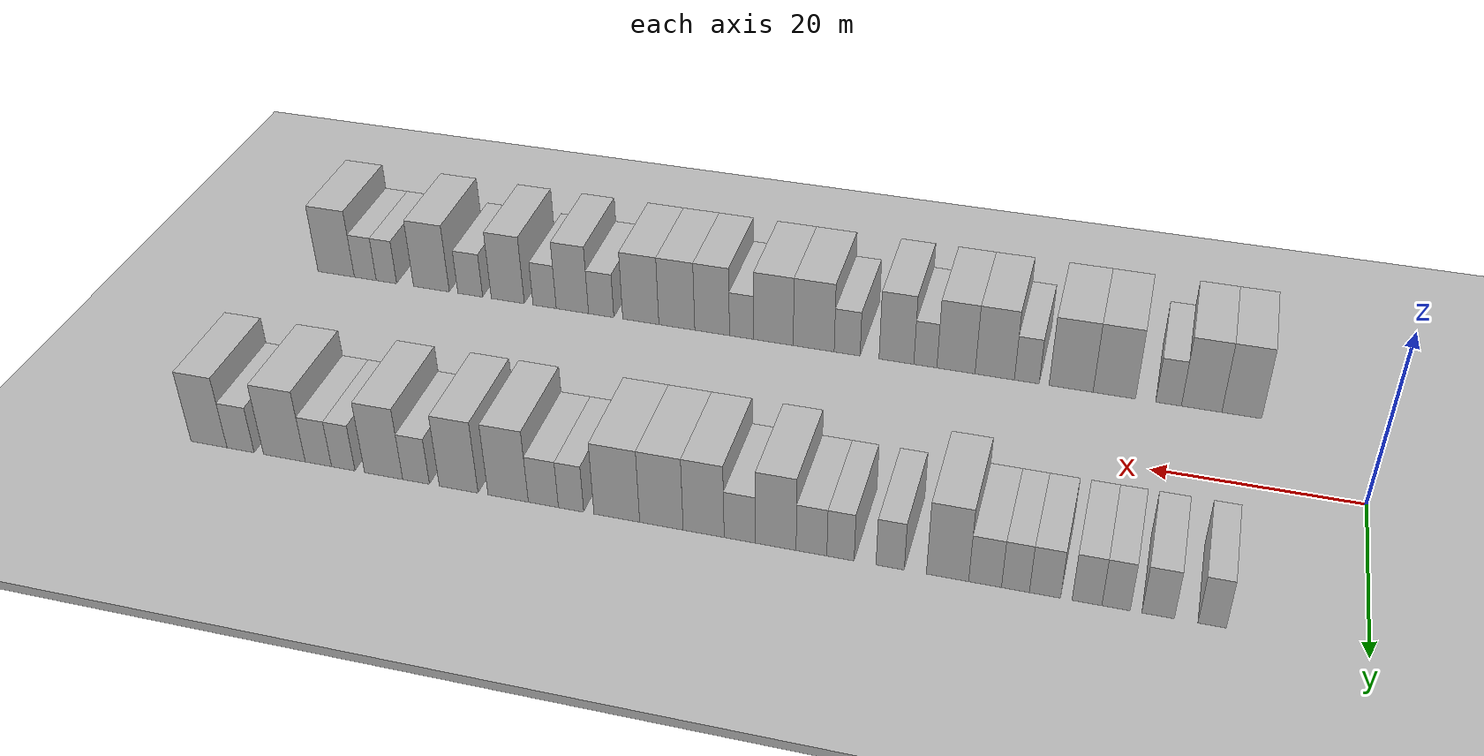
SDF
<sdf version="1.6">
 <world name="default">
  <include><name>ground_plane_1</name><uri>model://HANNAS_ground_plane</uri></include>
  <include>
   <name>ground_plane_2</name>
   <uri>model://HANNAS_ground_plane</uri>
   <pose>100 0 0  0 0 0</pose>
  </include>
  <model name="building_1">
   <static>1</static>
   <pose>13.2014 15.0000 0 0.000000 0.000000 1.570796</pose>
   <link name="link">
    <pose>0 0 3.00 0 0 0</pose>
    <collision name="collision"><geometry><box><size>10.0000 2.4029 6.0000</size></box></geometry></collision>
    <visual name="visual">
     <cast_shadows>0</cast_shadows>
     <geometry><box><size>10.0000 2.4029 6.0000</size></box></geometry>
     <material>
      <script>
       <uri>model://HANNAS_wall/materials/scripts</uri>
       <uri>model://HANNAS_wall/materials/textures</uri>
       <name>vrc/HANNAS_wall</name>
      </script>
     </material>
    </visual>
   </link>
  </model>
  <model name="building_2">
   <static>1</static>
   <pose>17.7954 15.0000 0 0.000000 0.000000 1.570796</pose>
   <link name="link">
    <pose>0 0 3.00 0 0 0</pose>
    <collision name="collision"><geometry><box><size>10.0000 2.7850 6.0000</size></box></geometry></collision>
    <visual name="visual">
     <cast_shadows>0</cast_shadows>
     <geometry><box><size>10.0000 2.7850 6.0000</size></box></geometry>
     <material>
      <script>
       <uri>model://HANNAS_wall/materials/scripts</uri>
       <uri>model://HANNAS_wall/materials/textures</uri>
       <name>vrc/HANNAS_wall</name>
      </script>
     </material>
    </visual>
   </link>
  </model>
  <model name="building_3">
   <static>1</static>
   <pose>21.4154 15.0000 0 0.000000 0.000000 1.570796</pose>
   <link name="link">
    <pose>0 0 3.00 0 0 0</pose>
    <collision name="collision"><geometry><box><size>10.0000 2.4551 6.0000</size></box></geometry></collision>
    <visual name="visual">
     <cast_shadows>0</cast_shadows>
     <geometry><box><size>10.0000 2.4551 6.0000</size></box></geometry>
     <material>
      <script>
       <uri>model://HANNAS_wall/materials/scripts</uri>
       <uri>model://HANNAS_wall/materials/textures</uri>
       <name>vrc/HANNAS_wall</name>
      </script>
     </material>
    </visual>
   </link>
  </model>
  <model name="building_4">
   <static>1</static>
   <pose>23.9385 15.0000 0 0.000000 0.000000 1.570796</pose>
   <link name="link">
    <pose>0 0 3.00 0 0 0</pose>
    <collision name="collision"><geometry><box><size>10.0000 2.5911 6.0000</size></box></geometry></collision>
    <visual name="visual">
     <cast_shadows>0</cast_shadows>
     <geometry><box><size>10.0000 2.5911 6.0000</size></box></geometry>
     <material>
      <script>
       <uri>model://HANNAS_wall/materials/scripts</uri>
       <uri>model://HANNAS_wall/materials/textures</uri>
       <name>vrc/HANNAS_wall</name>
      </script>
     </material>
    </visual>
   </link>
  </model>
  <model name="building_5">
   <static>1</static>
   <pose>27.6037 15.0000 0 0.000000 0.000000 1.570796</pose>
   <link name="link">
    <pose>0 0 3.00 0 0 0</pose>
    <collision name="collision"><geometry><box><size>10.0000 2.7393 6.0000</size></box></geometry></collision>
    <visual name="visual">
     <cast_shadows>0</cast_shadows>
     <geometry><box><size>10.0000 2.7393 6.0000</size></box></geometry>
     <material>
      <script>
       <uri>model://HANNAS_wall/materials/scripts</uri>
       <uri>model://HANNAS_wall/materials/textures</uri>
       <name>vrc/HANNAS_wall</name>
      </script>
     </material>
    </visual>
   </link>
  </model>
  <model name="building_6">
   <static>1</static>
   <pose>30.2066 15.0000 0 0.000000 0.000000 1.570796</pose>
   <link name="link">
    <pose>0 0 3.00 0 0 0</pose>
    <collision name="collision"><geometry><box><size>10.0000 2.4665 6.0000</size></box></geometry></collision>
    <visual name="visual">
     <cast_shadows>0</cast_shadows>
     <geometry><box><size>10.0000 2.4665 6.0000</size></box></geometry>
     <material>
      <script>
       <uri>model://HANNAS_wall/materials/scripts</uri>
       <uri>model://HANNAS_wall/materials/textures</uri>
       <name>vrc/HANNAS_wall</name>
      </script>
     </material>
    </visual>
   </link>
  </model>
  <model name="building_7">
   <static>1</static>
   <pose>32.9014 15.0000 0 0.000000 0.000000 1.570796</pose>
   <link name="link">
    <pose>0 0 3.00 0 0 0</pose>
    <collision name="collision"><geometry><box><size>10.0000 2.9229 6.0000</size></box></geometry></collision>
    <visual name="visual">
     <cast_shadows>0</cast_shadows>
     <geometry><box><size>10.0000 2.9229 6.0000</size></box></geometry>
     <material>
      <script>
       <uri>model://HANNAS_wall/materials/scripts</uri>
       <uri>model://HANNAS_wall/materials/textures</uri>
       <name>vrc/HANNAS_wall</name>
      </script>
     </material>
    </visual>
   </link>
  </model>
  <model name="building_8">
   <static>1</static>
   <pose>36.2609 15.0000 0 0.000000 0.000000 1.570796</pose>
   <link name="link">
    <pose>0 0 4.50 0 0 0</pose>
    <collision name="collision"><geometry><box><size>10.0000 3.7962 9.0000</size></box></geometry></collision>
    <visual name="visual">
     <cast_shadows>0</cast_shadows>
     <geometry><box><size>10.0000 3.7962 9.0000</size></box></geometry>
     <material>
      <script>
       <uri>model://HANNAS_wall/materials/scripts</uri>
       <uri>model://HANNAS_wall/materials/textures</uri>
       <name>vrc/HANNAS_wall</name>
      </script>
     </material>
    </visual>
   </link>
  </model>
  <model name="building_9">
   <static>1</static>
   <pose>41.4479 15.0000 0 0.000000 0.000000 1.570796</pose>
   <link name="link">
    <pose>0 0 3.00 0 0 0</pose>
    <collision name="collision"><geometry><box><size>10.0000 2.5777 6.0000</size></box></geometry></collision>
    <visual name="visual">
     <cast_shadows>0</cast_shadows>
     <geometry><box><size>10.0000 2.5777 6.0000</size></box></geometry>
     <material>
      <script>
       <uri>model://HANNAS_wall/materials/scripts</uri>
       <uri>model://HANNAS_wall/materials/textures</uri>
       <name>vrc/HANNAS_wall</name>
      </script>
     </material>
    </visual>
   </link>
  </model>
  <model name="building_10">
   <static>1</static>
   <pose>45.9956 15.0000 0 0.000000 0.000000 1.570796</pose>
   <link name="link">
    <pose>0 0 3.00 0 0 0</pose>
    <collision name="collision"><geometry><box><size>10.0000 2.5177 6.0000</size></box></geometry></collision>
    <visual name="visual">
     <cast_shadows>0</cast_shadows>
     <geometry><box><size>10.0000 2.5177 6.0000</size></box></geometry>
     <material>
      <script>
       <uri>model://HANNAS_wall/materials/scripts</uri>
       <uri>model://HANNAS_wall/materials/textures</uri>
       <name>vrc/HANNAS_wall</name>
      </script>
     </material>
    </visual>
   </link>
  </model>
  <model name="building_11">
   <static>1</static>
   <pose>48.6783 15.0000 0 0.000000 0.000000 1.570796</pose>
   <link name="link">
    <pose>0 0 3.00 0 0 0</pose>
    <collision name="collision"><geometry><box><size>10.0000 2.8477 6.0000</size></box></geometry></collision>
    <visual name="visual">
     <cast_shadows>0</cast_shadows>
     <geometry><box><size>10.0000 2.8477 6.0000</size></box></geometry>
     <material>
      <script>
       <uri>model://HANNAS_wall/materials/scripts</uri>
       <uri>model://HANNAS_wall/materials/textures</uri>
       <name>vrc/HANNAS_wall</name>
      </script>
     </material>
    </visual>
   </link>
  </model>
  <model name="building_12">
   <static>1</static>
   <pose>51.9933 15.0000 0 0.000000 0.000000 1.570796</pose>
   <link name="link">
    <pose>0 0 4.50 0 0 0</pose>
    <collision name="collision"><geometry><box><size>10.0000 3.7822 9.0000</size></box></geometry></collision>
    <visual name="visual">
     <cast_shadows>0</cast_shadows>
     <geometry><box><size>10.0000 3.7822 9.0000</size></box></geometry>
     <material>
      <script>
       <uri>model://HANNAS_wall/materials/scripts</uri>
       <uri>model://HANNAS_wall/materials/textures</uri>
       <name>vrc/HANNAS_wall</name>
      </script>
     </material>
    </visual>
   </link>
  </model>
  <model name="building_13">
   <static>1</static>
   <pose>55.3688 15.0000 0 0.000000 0.000000 1.570796</pose>
   <link name="link">
    <pose>0 0 3.00 0 0 0</pose>
    <collision name="collision"><geometry><box><size>10.0000 2.9688 6.0000</size></box></geometry></collision>
    <visual name="visual">
     <cast_shadows>0</cast_shadows>
     <geometry><box><size>10.0000 2.9688 6.0000</size></box></geometry>
     <material>
      <script>
       <uri>model://HANNAS_wall/materials/scripts</uri>
       <uri>model://HANNAS_wall/materials/textures</uri>
       <name>vrc/HANNAS_wall</name>
      </script>
     </material>
    </visual>
   </link>
  </model>
  <model name="building_14">
   <static>1</static>
   <pose>58.8022 15.0000 0 0.000000 0.000000 1.570796</pose>
   <link name="link">
    <pose>0 0 4.50 0 0 0</pose>
    <collision name="collision"><geometry><box><size>10.0000 3.8981 9.0000</size></box></geometry></collision>
    <visual name="visual">
     <cast_shadows>0</cast_shadows>
     <geometry><box><size>10.0000 3.8981 9.0000</size></box></geometry>
     <material>
      <script>
       <uri>model://HANNAS_wall/materials/scripts</uri>
       <uri>model://HANNAS_wall/materials/textures</uri>
       <name>vrc/HANNAS_wall</name>
      </script>
     </material>
    </visual>
   </link>
  </model>
  <model name="building_15">
   <static>1</static>
   <pose>62.8452 15.0000 0 0.000000 0.000000 1.570796</pose>
   <link name="link">
    <pose>0 0 4.50 0 0 0</pose>
    <collision name="collision"><geometry><box><size>10.0000 4.1878 9.0000</size></box></geometry></collision>
    <visual name="visual">
     <cast_shadows>0</cast_shadows>
     <geometry><box><size>10.0000 4.1878 9.0000</size></box></geometry>
     <material>
      <script>
       <uri>model://HANNAS_wall/materials/scripts</uri>
       <uri>model://HANNAS_wall/materials/textures</uri>
       <name>vrc/HANNAS_wall</name>
      </script>
     </material>
    </visual>
   </link>
  </model>
  <model name="building_16">
   <static>1</static>
   <pose>67.1615 15.0000 0 0.000000 0.000000 1.570796</pose>
   <link name="link">
    <pose>0 0 4.50 0 0 0</pose>
    <collision name="collision"><geometry><box><size>10.0000 4.4448 9.0000</size></box></geometry></collision>
    <visual name="visual">
     <cast_shadows>0</cast_shadows>
     <geometry><box><size>10.0000 4.4448 9.0000</size></box></geometry>
     <material>
      <script>
       <uri>model://HANNAS_wall/materials/scripts</uri>
       <uri>model://HANNAS_wall/materials/textures</uri>
       <name>vrc/HANNAS_wall</name>
      </script>
     </material>
    </visual>
   </link>
  </model>
  <model name="building_17">
   <static>1</static>
   <pose>71.6301 15.0000 0 0.000000 0.000000 1.570796</pose>
   <link name="link">
    <pose>0 0 3.00 0 0 0</pose>
    <collision name="collision"><geometry><box><size>10.0000 2.4925 6.0000</size></box></geometry></collision>
    <visual name="visual">
     <cast_shadows>0</cast_shadows>
     <geometry><box><size>10.0000 2.4925 6.0000</size></box></geometry>
     <material>
      <script>
       <uri>model://HANNAS_wall/materials/scripts</uri>
       <uri>model://HANNAS_wall/materials/textures</uri>
       <name>vrc/HANNAS_wall</name>
      </script>
     </material>
    </visual>
   </link>
  </model>
  <model name="building_18">
   <static>1</static>
   <pose>74.3623 15.0000 0 0.000000 0.000000 1.570796</pose>
   <link name="link">
    <pose>0 0 3.00 0 0 0</pose>
    <collision name="collision"><geometry><box><size>10.0000 2.9719 6.0000</size></box></geometry></collision>
    <visual name="visual">
     <cast_shadows>0</cast_shadows>
     <geometry><box><size>10.0000 2.9719 6.0000</size></box></geometry>
     <material>
      <script>
       <uri>model://HANNAS_wall/materials/scripts</uri>
       <uri>model://HANNAS_wall/materials/textures</uri>
       <name>vrc/HANNAS_wall</name>
      </script>
     </material>
    </visual>
   </link>
  </model>
  <model name="building_19">
   <static>1</static>
   <pose>77.8619 15.0000 0 0.000000 0.000000 1.570796</pose>
   <link name="link">
    <pose>0 0 4.50 0 0 0</pose>
    <collision name="collision"><geometry><box><size>10.0000 4.0272 9.0000</size></box></geometry></collision>
    <visual name="visual">
     <cast_shadows>0</cast_shadows>
     <geometry><box><size>10.0000 4.0272 9.0000</size></box></geometry>
     <material>
      <script>
       <uri>model://HANNAS_wall/materials/scripts</uri>
       <uri>model://HANNAS_wall/materials/textures</uri>
       <name>vrc/HANNAS_wall</name>
      </script>
     </material>
    </visual>
   </link>
  </model>
  <model name="building_20">
   <static>1</static>
   <pose>82.8364 15.0000 0 0.000000 0.000000 1.570796</pose>
   <link name="link">
    <pose>0 0 4.50 0 0 0</pose>
    <collision name="collision"><geometry><box><size>10.0000 3.9218 9.0000</size></box></geometry></collision>
    <visual name="visual">
     <cast_shadows>0</cast_shadows>
     <geometry><box><size>10.0000 3.9218 9.0000</size></box></geometry>
     <material>
      <script>
       <uri>model://HANNAS_wall/materials/scripts</uri>
       <uri>model://HANNAS_wall/materials/textures</uri>
       <name>vrc/HANNAS_wall</name>
      </script>
     </material>
    </visual>
   </link>
  </model>
  <model name="building_21">
   <static>1</static>
   <pose>87.1644 15.0000 0 0.000000 0.000000 1.570796</pose>
   <link name="link">
    <pose>0 0 3.00 0 0 0</pose>
    <collision name="collision"><geometry><box><size>10.0000 2.7342 6.0000</size></box></geometry></collision>
    <visual name="visual">
     <cast_shadows>0</cast_shadows>
     <geometry><box><size>10.0000 2.7342 6.0000</size></box></geometry>
     <material>
      <script>
       <uri>model://HANNAS_wall/materials/scripts</uri>
       <uri>model://HANNAS_wall/materials/textures</uri>
       <name>vrc/HANNAS_wall</name>
      </script>
     </material>
    </visual>
   </link>
  </model>
  <model name="building_22">
   <static>1</static>
   <pose>90.4941 15.0000 0 0.000000 0.000000 1.570796</pose>
   <link name="link">
    <pose>0 0 4.50 0 0 0</pose>
    <collision name="collision"><geometry><box><size>10.0000 3.9252 9.0000</size></box></geometry></collision>
    <visual name="visual">
     <cast_shadows>0</cast_shadows>
     <geometry><box><size>10.0000 3.9252 9.0000</size></box></geometry>
     <material>
      <script>
       <uri>model://HANNAS_wall/materials/scripts</uri>
       <uri>model://HANNAS_wall/materials/textures</uri>
       <name>vrc/HANNAS_wall</name>
      </script>
     </material>
    </visual>
   </link>
  </model>
  <model name="building_23">
   <static>1</static>
   <pose>94.6765 15.0000 0 0.000000 0.000000 1.570796</pose>
   <link name="link">
    <pose>0 0 3.00 0 0 0</pose>
    <collision name="collision"><geometry><box><size>10.0000 2.4396 6.0000</size></box></geometry></collision>
    <visual name="visual">
     <cast_shadows>0</cast_shadows>
     <geometry><box><size>10.0000 2.4396 6.0000</size></box></geometry>
     <material>
      <script>
       <uri>model://HANNAS_wall/materials/scripts</uri>
       <uri>model://HANNAS_wall/materials/textures</uri>
       <name>vrc/HANNAS_wall</name>
      </script>
     </material>
    </visual>
   </link>
  </model>
  <model name="building_24">
   <static>1</static>
   <pose>97.2753 15.0000 0 0.000000 0.000000 1.570796</pose>
   <link name="link">
    <pose>0 0 3.00 0 0 0</pose>
    <collision name="collision"><geometry><box><size>10.0000 2.7580 6.0000</size></box></geometry></collision>
    <visual name="visual">
     <cast_shadows>0</cast_shadows>
     <geometry><box><size>10.0000 2.7580 6.0000</size></box></geometry>
     <material>
      <script>
       <uri>model://HANNAS_wall/materials/scripts</uri>
       <uri>model://HANNAS_wall/materials/textures</uri>
       <name>vrc/HANNAS_wall</name>
      </script>
     </material>
    </visual>
   </link>
  </model>
  <model name="building_25">
   <static>1</static>
   <pose>100.8544 15.0000 0 0.000000 0.000000 1.570796</pose>
   <link name="link">
    <pose>0 0 4.50 0 0 0</pose>
    <collision name="collision"><geometry><box><size>10.0000 4.4003 9.0000</size></box></geometry></collision>
    <visual name="visual">
     <cast_shadows>0</cast_shadows>
     <geometry><box><size>10.0000 4.4003 9.0000</size></box></geometry>
     <material>
      <script>
       <uri>model://HANNAS_wall/materials/scripts</uri>
       <uri>model://HANNAS_wall/materials/textures</uri>
       <name>vrc/HANNAS_wall</name>
      </script>
     </material>
    </visual>
   </link>
  </model>
  <model name="building_26">
   <static>1</static>
   <pose>105.5059 15.0000 0 0.000000 0.000000 1.570796</pose>
   <link name="link">
    <pose>0 0 3.00 0 0 0</pose>
    <collision name="collision"><geometry><box><size>10.0000 2.9027 6.0000</size></box></geometry></collision>
    <visual name="visual">
     <cast_shadows>0</cast_shadows>
     <geometry><box><size>10.0000 2.9027 6.0000</size></box></geometry>
     <material>
      <script>
       <uri>model://HANNAS_wall/materials/scripts</uri>
       <uri>model://HANNAS_wall/materials/textures</uri>
       <name>vrc/HANNAS_wall</name>
      </script>
     </material>
    </visual>
   </link>
  </model>
  <model name="building_27">
   <static>1</static>
   <pose>108.8884 15.0000 0 0.000000 0.000000 1.570796</pose>
   <link name="link">
    <pose>0 0 4.50 0 0 0</pose>
    <collision name="collision"><geometry><box><size>10.0000 3.8622 9.0000</size></box></geometry></collision>
    <visual name="visual">
     <cast_shadows>0</cast_shadows>
     <geometry><box><size>10.0000 3.8622 9.0000</size></box></geometry>
     <material>
      <script>
       <uri>model://HANNAS_wall/materials/scripts</uri>
       <uri>model://HANNAS_wall/materials/textures</uri>
       <name>vrc/HANNAS_wall</name>
      </script>
     </material>
    </visual>
   </link>
  </model>
  <model name="building_54">
   <static>1</static>
   <pose>11.9435 -15.0000 0 0.000000 0.000000 1.570796</pose>
   <link name="link">
    <pose>0 0 4.50 0 0 0</pose>
    <collision name="collision"><geometry><box><size>10.0000 3.8869 9.0000</size></box></geometry></collision>
    <visual name="visual">
     <cast_shadows>0</cast_shadows>
     <geometry><box><size>10.0000 3.8869 9.0000</size></box></geometry>
     <material>
      <script>
       <uri>model://HANNAS_wall/materials/scripts</uri>
       <uri>model://HANNAS_wall/materials/textures</uri>
       <name>vrc/HANNAS_wall</name>
      </script>
     </material>
    </visual>
   </link>
  </model>
  <model name="building_55">
   <static>1</static>
   <pose>15.8666 -15.0000 0 0.000000 0.000000 1.570796</pose>
   <link name="link">
    <pose>0 0 4.50 0 0 0</pose>
    <collision name="collision"><geometry><box><size>10.0000 3.9593 9.0000</size></box></geometry></collision>
    <visual name="visual">
     <cast_shadows>0</cast_shadows>
     <geometry><box><size>10.0000 3.9593 9.0000</size></box></geometry>
     <material>
      <script>
       <uri>model://HANNAS_wall/materials/scripts</uri>
       <uri>model://HANNAS_wall/materials/textures</uri>
       <name>vrc/HANNAS_wall</name>
      </script>
     </material>
    </visual>
   </link>
  </model>
  <model name="building_56">
   <static>1</static>
   <pose>19.1136 -15.0000 0 0.000000 0.000000 1.570796</pose>
   <link name="link">
    <pose>0 0 3.00 0 0 0</pose>
    <collision name="collision"><geometry><box><size>10.0000 2.5347 6.0000</size></box></geometry></collision>
    <visual name="visual">
     <cast_shadows>0</cast_shadows>
     <geometry><box><size>10.0000 2.5347 6.0000</size></box></geometry>
     <material>
      <script>
       <uri>model://HANNAS_wall/materials/scripts</uri>
       <uri>model://HANNAS_wall/materials/textures</uri>
       <name>vrc/HANNAS_wall</name>
      </script>
     </material>
    </visual>
   </link>
  </model>
  <model name="building_57">
   <static>1</static>
   <pose>24.5048 -15.0000 0 0.000000 0.000000 1.570796</pose>
   <link name="link">
    <pose>0 0 4.50 0 0 0</pose>
    <collision name="collision"><geometry><box><size>10.0000 4.2478 9.0000</size></box></geometry></collision>
    <visual name="visual">
     <cast_shadows>0</cast_shadows>
     <geometry><box><size>10.0000 4.2478 9.0000</size></box></geometry>
     <material>
      <script>
       <uri>model://HANNAS_wall/materials/scripts</uri>
       <uri>model://HANNAS_wall/materials/textures</uri>
       <name>vrc/HANNAS_wall</name>
      </script>
     </material>
    </visual>
   </link>
  </model>
  <model name="building_58">
   <static>1</static>
   <pose>28.8528 -15.0000 0 0.000000 0.000000 1.570796</pose>
   <link name="link">
    <pose>0 0 4.50 0 0 0</pose>
    <collision name="collision"><geometry><box><size>10.0000 4.4482 9.0000</size></box></geometry></collision>
    <visual name="visual">
     <cast_shadows>0</cast_shadows>
     <geometry><box><size>10.0000 4.4482 9.0000</size></box></geometry>
     <material>
      <script>
       <uri>model://HANNAS_wall/materials/scripts</uri>
       <uri>model://HANNAS_wall/materials/textures</uri>
       <name>vrc/HANNAS_wall</name>
      </script>
     </material>
    </visual>
   </link>
  </model>
  <model name="building_59">
   <static>1</static>
   <pose>33.3457 -15.0000 0 0.000000 0.000000 1.570796</pose>
   <link name="link">
    <pose>0 0 3.00 0 0 0</pose>
    <collision name="collision"><geometry><box><size>10.0000 2.5378 6.0000</size></box></geometry></collision>
    <visual name="visual">
     <cast_shadows>0</cast_shadows>
     <geometry><box><size>10.0000 2.5378 6.0000</size></box></geometry>
     <material>
      <script>
       <uri>model://HANNAS_wall/materials/scripts</uri>
       <uri>model://HANNAS_wall/materials/textures</uri>
       <name>vrc/HANNAS_wall</name>
      </script>
     </material>
    </visual>
   </link>
  </model>
  <model name="building_60">
   <static>1</static>
   <pose>36.6359 -15.0000 0 0.000000 0.000000 1.570796</pose>
   <link name="link">
    <pose>0 0 4.50 0 0 0</pose>
    <collision name="collision"><geometry><box><size>10.0000 4.0426 9.0000</size></box></geometry></collision>
    <visual name="visual">
     <cast_shadows>0</cast_shadows>
     <geometry><box><size>10.0000 4.0426 9.0000</size></box></geometry>
     <material>
      <script>
       <uri>model://HANNAS_wall/materials/scripts</uri>
       <uri>model://HANNAS_wall/materials/textures</uri>
       <name>vrc/HANNAS_wall</name>
      </script>
     </material>
    </visual>
   </link>
  </model>
  <model name="building_61">
   <static>1</static>
   <pose>40.6339 -15.0000 0 0.000000 0.000000 1.570796</pose>
   <link name="link">
    <pose>0 0 4.50 0 0 0</pose>
    <collision name="collision"><geometry><box><size>10.0000 3.9534 9.0000</size></box></geometry></collision>
    <visual name="visual">
     <cast_shadows>0</cast_shadows>
     <geometry><box><size>10.0000 3.9534 9.0000</size></box></geometry>
     <material>
      <script>
       <uri>model://HANNAS_wall/materials/scripts</uri>
       <uri>model://HANNAS_wall/materials/textures</uri>
       <name>vrc/HANNAS_wall</name>
      </script>
     </material>
    </visual>
   </link>
  </model>
  <model name="building_62">
   <static>1</static>
   <pose>43.8188 -15.0000 0 0.000000 0.000000 1.570796</pose>
   <link name="link">
    <pose>0 0 3.00 0 0 0</pose>
    <collision name="collision"><geometry><box><size>10.0000 2.4164 6.0000</size></box></geometry></collision>
    <visual name="visual">
     <cast_shadows>0</cast_shadows>
     <geometry><box><size>10.0000 2.4164 6.0000</size></box></geometry>
     <material>
      <script>
       <uri>model://HANNAS_wall/materials/scripts</uri>
       <uri>model://HANNAS_wall/materials/textures</uri>
       <name>vrc/HANNAS_wall</name>
      </script>
     </material>
    </visual>
   </link>
  </model>
  <model name="building_63">
   <static>1</static>
   <pose>46.8546 -15.0000 0 0.000000 0.000000 1.570796</pose>
   <link name="link">
    <pose>0 0 4.50 0 0 0</pose>
    <collision name="collision"><geometry><box><size>10.0000 3.6552 9.0000</size></box></geometry></collision>
    <visual name="visual">
     <cast_shadows>0</cast_shadows>
     <geometry><box><size>10.0000 3.6552 9.0000</size></box></geometry>
     <material>
      <script>
       <uri>model://HANNAS_wall/materials/scripts</uri>
       <uri>model://HANNAS_wall/materials/textures</uri>
       <name>vrc/HANNAS_wall</name>
      </script>
     </material>
    </visual>
   </link>
  </model>
  <model name="building_64">
   <static>1</static>
   <pose>52.0628 -15.0000 0 0.000000 0.000000 1.570796</pose>
   <link name="link">
    <pose>0 0 3.00 0 0 0</pose>
    <collision name="collision"><geometry><box><size>10.0000 2.7612 6.0000</size></box></geometry></collision>
    <visual name="visual">
     <cast_shadows>0</cast_shadows>
     <geometry><box><size>10.0000 2.7612 6.0000</size></box></geometry>
     <material>
      <script>
       <uri>model://HANNAS_wall/materials/scripts</uri>
       <uri>model://HANNAS_wall/materials/textures</uri>
       <name>vrc/HANNAS_wall</name>
      </script>
     </material>
    </visual>
   </link>
  </model>
  <model name="building_65">
   <static>1</static>
   <pose>55.6362 -15.0000 0 0.000000 0.000000 1.570796</pose>
   <link name="link">
    <pose>0 0 4.50 0 0 0</pose>
    <collision name="collision"><geometry><box><size>10.0000 4.3856 9.0000</size></box></geometry></collision>
    <visual name="visual">
     <cast_shadows>0</cast_shadows>
     <geometry><box><size>10.0000 4.3856 9.0000</size></box></geometry>
     <material>
      <script>
       <uri>model://HANNAS_wall/materials/scripts</uri>
       <uri>model://HANNAS_wall/materials/textures</uri>
       <name>vrc/HANNAS_wall</name>
      </script>
     </material>
    </visual>
   </link>
  </model>
  <model name="building_66">
   <static>1</static>
   <pose>59.9637 -15.0000 0 0.000000 0.000000 1.570796</pose>
   <link name="link">
    <pose>0 0 4.50 0 0 0</pose>
    <collision name="collision"><geometry><box><size>10.0000 4.2694 9.0000</size></box></geometry></collision>
    <visual name="visual">
     <cast_shadows>0</cast_shadows>
     <geometry><box><size>10.0000 4.2694 9.0000</size></box></geometry>
     <material>
      <script>
       <uri>model://HANNAS_wall/materials/scripts</uri>
       <uri>model://HANNAS_wall/materials/textures</uri>
       <name>vrc/HANNAS_wall</name>
      </script>
     </material>
    </visual>
   </link>
  </model>
  <model name="building_67">
   <static>1</static>
   <pose>63.4255 -15.0000 0 0.000000 0.000000 1.570796</pose>
   <link name="link">
    <pose>0 0 3.00 0 0 0</pose>
    <collision name="collision"><geometry><box><size>10.0000 2.6542 6.0000</size></box></geometry></collision>
    <visual name="visual">
     <cast_shadows>0</cast_shadows>
     <geometry><box><size>10.0000 2.6542 6.0000</size></box></geometry>
     <material>
      <script>
       <uri>model://HANNAS_wall/materials/scripts</uri>
       <uri>model://HANNAS_wall/materials/textures</uri>
       <name>vrc/HANNAS_wall</name>
      </script>
     </material>
    </visual>
   </link>
  </model>
  <model name="building_68">
   <static>1</static>
   <pose>66.6606 -15.0000 0 0.000000 0.000000 1.570796</pose>
   <link name="link">
    <pose>0 0 4.50 0 0 0</pose>
    <collision name="collision"><geometry><box><size>10.0000 3.8160 9.0000</size></box></geometry></collision>
    <visual name="visual">
     <cast_shadows>0</cast_shadows>
     <geometry><box><size>10.0000 3.8160 9.0000</size></box></geometry>
     <material>
      <script>
       <uri>model://HANNAS_wall/materials/scripts</uri>
       <uri>model://HANNAS_wall/materials/textures</uri>
       <name>vrc/HANNAS_wall</name>
      </script>
     </material>
    </visual>
   </link>
  </model>
  <model name="building_69">
   <static>1</static>
   <pose>70.5635 -15.0000 0 0.000000 0.000000 1.570796</pose>
   <link name="link">
    <pose>0 0 4.50 0 0 0</pose>
    <collision name="collision"><geometry><box><size>10.0000 3.9898 9.0000</size></box></geometry></collision>
    <visual name="visual">
     <cast_shadows>0</cast_shadows>
     <geometry><box><size>10.0000 3.9898 9.0000</size></box></geometry>
     <material>
      <script>
       <uri>model://HANNAS_wall/materials/scripts</uri>
       <uri>model://HANNAS_wall/materials/textures</uri>
       <name>vrc/HANNAS_wall</name>
      </script>
     </material>
    </visual>
   </link>
  </model>
  <model name="building_70">
   <static>1</static>
   <pose>74.5775 -15.0000 0 0.000000 0.000000 1.570796</pose>
   <link name="link">
    <pose>0 0 4.50 0 0 0</pose>
    <collision name="collision"><geometry><box><size>10.0000 4.0384 9.0000</size></box></geometry></collision>
    <visual name="visual">
     <cast_shadows>0</cast_shadows>
     <geometry><box><size>10.0000 4.0384 9.0000</size></box></geometry>
     <material>
      <script>
       <uri>model://HANNAS_wall/materials/scripts</uri>
       <uri>model://HANNAS_wall/materials/textures</uri>
       <name>vrc/HANNAS_wall</name>
      </script>
     </material>
    </visual>
   </link>
  </model>
  <model name="building_71">
   <static>1</static>
   <pose>79.0255 -15.0000 0 0.000000 0.000000 1.570796</pose>
   <link name="link">
    <pose>0 0 3.00 0 0 0</pose>
    <collision name="collision"><geometry><box><size>10.0000 2.8575 6.0000</size></box></geometry></collision>
    <visual name="visual">
     <cast_shadows>0</cast_shadows>
     <geometry><box><size>10.0000 2.8575 6.0000</size></box></geometry>
     <material>
      <script>
       <uri>model://HANNAS_wall/materials/scripts</uri>
       <uri>model://HANNAS_wall/materials/textures</uri>
       <name>vrc/HANNAS_wall</name>
      </script>
     </material>
    </visual>
   </link>
  </model>
  <model name="building_72">
   <static>1</static>
   <pose>82.2898 -15.0000 0 0.000000 0.000000 1.570796</pose>
   <link name="link">
    <pose>0 0 4.50 0 0 0</pose>
    <collision name="collision"><geometry><box><size>10.0000 3.6711 9.0000</size></box></geometry></collision>
    <visual name="visual">
     <cast_shadows>0</cast_shadows>
     <geometry><box><size>10.0000 3.6711 9.0000</size></box></geometry>
     <material>
      <script>
       <uri>model://HANNAS_wall/materials/scripts</uri>
       <uri>model://HANNAS_wall/materials/textures</uri>
       <name>vrc/HANNAS_wall</name>
      </script>
     </material>
    </visual>
   </link>
  </model>
  <model name="building_73">
   <static>1</static>
   <pose>85.4542 -15.0000 0 0.000000 0.000000 1.570796</pose>
   <link name="link">
    <pose>0 0 3.00 0 0 0</pose>
    <collision name="collision"><geometry><box><size>10.0000 2.6576 6.0000</size></box></geometry></collision>
    <visual name="visual">
     <cast_shadows>0</cast_shadows>
     <geometry><box><size>10.0000 2.6576 6.0000</size></box></geometry>
     <material>
      <script>
       <uri>model://HANNAS_wall/materials/scripts</uri>
       <uri>model://HANNAS_wall/materials/textures</uri>
       <name>vrc/HANNAS_wall</name>
      </script>
     </material>
    </visual>
   </link>
  </model>
  <model name="building_74">
   <static>1</static>
   <pose>89.6937 -15.0000 0 0.000000 0.000000 1.570796</pose>
   <link name="link">
    <pose>0 0 4.50 0 0 0</pose>
    <collision name="collision"><geometry><box><size>10.0000 3.8214 9.0000</size></box></geometry></collision>
    <visual name="visual">
     <cast_shadows>0</cast_shadows>
     <geometry><box><size>10.0000 3.8214 9.0000</size></box></geometry>
     <material>
      <script>
       <uri>model://HANNAS_wall/materials/scripts</uri>
       <uri>model://HANNAS_wall/materials/textures</uri>
       <name>vrc/HANNAS_wall</name>
      </script>
     </material>
    </visual>
   </link>
  </model>
  <model name="building_75">
   <static>1</static>
   <pose>94.0537 -15.0000 0 0.000000 0.000000 1.570796</pose>
   <link name="link">
    <pose>0 0 3.00 0 0 0</pose>
    <collision name="collision"><geometry><box><size>10.0000 2.8985 6.0000</size></box></geometry></collision>
    <visual name="visual">
     <cast_shadows>0</cast_shadows>
     <geometry><box><size>10.0000 2.8985 6.0000</size></box></geometry>
     <material>
      <script>
       <uri>model://HANNAS_wall/materials/scripts</uri>
       <uri>model://HANNAS_wall/materials/textures</uri>
       <name>vrc/HANNAS_wall</name>
      </script>
     </material>
    </visual>
   </link>
  </model>
  <model name="building_76">
   <static>1</static>
   <pose>98.6105 -15.0000 0 0.000000 0.000000 1.570796</pose>
   <link name="link">
    <pose>0 0 4.50 0 0 0</pose>
    <collision name="collision"><geometry><box><size>10.0000 4.2151 9.0000</size></box></geometry></collision>
    <visual name="visual">
     <cast_shadows>0</cast_shadows>
     <geometry><box><size>10.0000 4.2151 9.0000</size></box></geometry>
     <material>
      <script>
       <uri>model://HANNAS_wall/materials/scripts</uri>
       <uri>model://HANNAS_wall/materials/textures</uri>
       <name>vrc/HANNAS_wall</name>
      </script>
     </material>
    </visual>
   </link>
  </model>
  <model name="building_77">
   <static>1</static>
   <pose>103.9355 -15.0000 0 0.000000 0.000000 1.570796</pose>
   <link name="link">
    <pose>0 0 3.00 0 0 0</pose>
    <collision name="collision"><geometry><box><size>10.0000 2.4348 6.0000</size></box></geometry></collision>
    <visual name="visual">
     <cast_shadows>0</cast_shadows>
     <geometry><box><size>10.0000 2.4348 6.0000</size></box></geometry>
     <material>
      <script>
       <uri>model://HANNAS_wall/materials/scripts</uri>
       <uri>model://HANNAS_wall/materials/textures</uri>
       <name>vrc/HANNAS_wall</name>
      </script>
     </material>
    </visual>
   </link>
  </model>
  <model name="building_78">
   <static>1</static>
   <pose>106.4624 -15.0000 0 0.000000 0.000000 1.570796</pose>
   <link name="link">
    <pose>0 0 3.00 0 0 0</pose>
    <collision name="collision"><geometry><box><size>10.0000 2.6191 6.0000</size></box></geometry></collision>
    <visual name="visual">
     <cast_shadows>0</cast_shadows>
     <geometry><box><size>10.0000 2.6191 6.0000</size></box></geometry>
     <material>
      <script>
       <uri>model://HANNAS_wall/materials/scripts</uri>
       <uri>model://HANNAS_wall/materials/textures</uri>
       <name>vrc/HANNAS_wall</name>
      </script>
     </material>
    </visual>
   </link>
  </model>
  <model name="building_79">
   <static>1</static>
   <pose>109.9607 -15.0000 0 0.000000 0.000000 1.570796</pose>
   <link name="link">
    <pose>0 0 4.50 0 0 0</pose>
    <collision name="collision"><geometry><box><size>10.0000 4.3775 9.0000</size></box></geometry></collision>
    <visual name="visual">
     <cast_shadows>0</cast_shadows>
     <geometry><box><size>10.0000 4.3775 9.0000</size></box></geometry>
     <material>
      <script>
       <uri>model://HANNAS_wall/materials/scripts</uri>
       <uri>model://HANNAS_wall/materials/textures</uri>
       <name>vrc/HANNAS_wall</name>
      </script>
     </material>
    </visual>
   </link>
  </model>
 </world>
</sdf>
